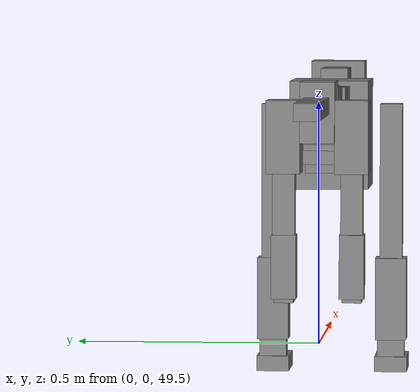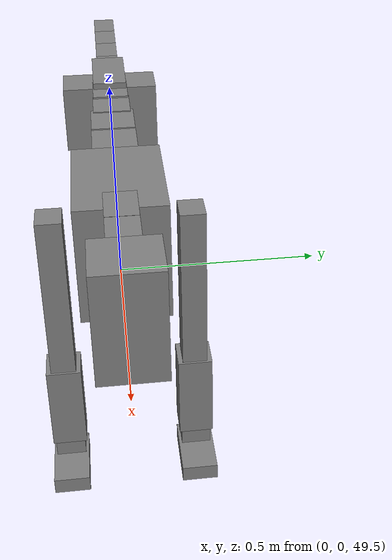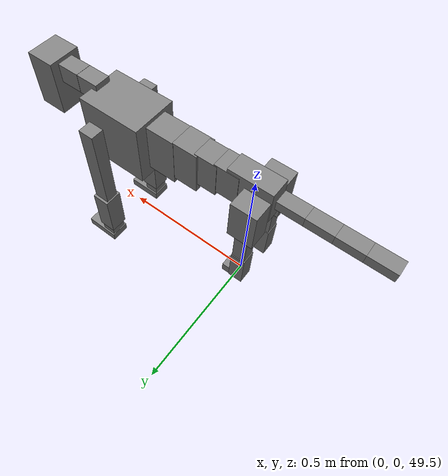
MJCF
<mujoco model="dog">

    <default>
        <joint armature="0.02" stiffness="1" damping="0.2" limited="true"/>
        <geom condim="3" friction="1 0.05 0.05" margin="0.01"/>
        <motor ctrllimited="true" ctrlrange="-1.0 1.0" forcelimited="true" gear="50"/>
    </default>

    <compiler inertiafromgeom="true" angle="radian"/>

    <option timestep="0.016" iterations="50" tolerance="1e-10" solver="Newton" jacobian="dense" cone="pyramidal"/>

    <size nconmax="20000" njmax="60000" nstack="5000000"/>
    <visual>
        <map force="0.1" zfar="30"/>
        <rgba haze="0.15 0.25 0.35 1"/>
        <quality shadowsize="2048"/>
        <global offwidth="800" offheight="800"/>
    </visual>

    <asset>
        <texture type="skybox" builtin="gradient" rgb1="0.3 0.5 0.7" rgb2="0 0 0" width="512" height="512"/>
        <texture name="texplane" type="2d" builtin="checker" rgb1=".2 .3 .4" rgb2=".1 0.15 0.2" width="512" height="512"
                 mark="cross" markrgb=".8 .8 .8"/>
        <texture name="texgeom" type="cube" builtin="flat" mark="cross" width="127" height="1278" rgb1="0.8 0.6 0.4"
                 rgb2="0.8 0.6 0.4" markrgb="1 1 1" random="0.01"/>

        <material name="matplane" reflectance="0.3" texture="texplane" texrepeat="1 1" texuniform="true"/>
        <material name="matgeom" texture="texgeom" texuniform="true" rgba="0.8 0.6 .4 1"/>
    </asset>

    <worldbody>
        <geom name="floor" pos="0 0 0" size="0 0 .25" type="plane" material="matplane" condim="3"/>

        <light directional="false" diffuse=".2 .2 .2" specular="0 0 0" pos="0 0 5" dir="0 0 -1" castshadow="false"/>
        <light mode="targetbodycom" target="torso" directional="false" diffuse=".8 .8 .8" specular="0.3 0.3 0.3"
               pos="0 0 4.0" dir="0 0 -1"/>

        <body name="root" pos="0 0 50">
            <freejoint name="root_1"/>
            <geom type="box" pos="0 0 -0.02" size="0.0774  0.0358  0.063" density="2030"/>

            <body name="spine1" pos="0.054 0 0">
                <joint name="spine1_y" axis="0 1 0" range="0 0.7" limited="true"/>
                <geom type="box" pos="0.02375 0 -0.03" size="0.04375  0.0375  0.05985" density="2030"/>

                <body name="spine2" pos="0.0612 0 0">
                    <joint name="spine2_y" axis="0 1 0" range="-0.15 0.15" limited="true"/>
                    <geom type="box" pos="0.03555  0  -0.04" size="0.04055  0.039  0.06615" density="2030"/>

                    <body name="spine3" pos="0.0730 0 0">
                        <joint name="spine3_y" axis="0 1 0" range="-0.15 0.15" limited="true"/>
                        <geom type="box" pos="0.03555  0  -0.057" size="0.04555  0.0445  0.081" density="2030"/>

                        <body name="spine4" pos="0.0780 0 0">
                            <joint name="spine4_y" axis="0 1 0" range="-0.15 0.15" limited="true"/>
                            <geom type="box" pos="0.05265  0  -0.07" size="0.05265  0.045  0.09135" density="2030"/>

                            <body name="torso" pos="0.1082 0 0">
                                <joint name="torso_y" axis="0 1 0" range="-0.15 0.15" limited="true"/>
                                <geom type="box" pos="0.11925  0  -0.085" size="0.11925  0.085  0.11745"
                                      density="2030"/>

                                <body name="neck1" pos="0.2160  0   0.0180">
                                    <joint name="neck1_y" axis="0 1 0" range="-1.2  -1" limited="true"/>
                                    <geom type="box" pos="0.0423  0  0" size="0.0423  0.03  0.036" density="2325"/>

                                    <body name="neck2" pos="0.0853  0  0">
                                        <joint name="neck2_y" axis="0 1 0" range="0.1  0" limited="true"/>
                                        <geom type="box" pos="0.0423  0  0" size="0.0423  0.03  0.036" density="2325"/>

                                        <body name="head" pos="0.0853  0  0">
                                            <joint name="head_y" axis="0 1 0" range="-0.3  -0.2" limited="true"/>
                                            <geom type="box" pos="0.0531  0  -0.055" size="0.0531  0.06  0.1044"
                                                  density="4030"/>

                                        </body>
                                    </body>
                                </body>

                                <body name="front_shoulder" pos="0.156  0   -0.0480">
                                    <joint name="front_shoulder_y" axis="0 1 0" range="-1 1.5" limited="true"/>
                                    <geom type="box" pos="0 0.13 -0.1561" size="0.0287  0.0245  0.1827" density="1158"/>
                                    <geom type="box" pos="0 -0.13 -0.1561" size="0.0287  0.0245  0.1827"
                                          density="1158"/>

                                    <body name="front_elbow" pos="0  0  -0.3122">
                                        <joint name="front_elbow_y" axis="0 1 0" range="-2 0" limited="true"/>
                                        <geom type="box" pos="0 0.13 -0.0900" size="0.0333  0.0340  0.0900"
                                              density="1081"/>
                                        <geom type="box" pos="0 -0.13 -0.0900" size="0.0333  0.0340  0.0900"
                                              density="1081"/>

                                        <body name="front_wrist" pos="0  0  -0.1800">
                                            <joint name="front_wrist_y" axis="0 1 0" range="-0.2 0" limited="true"/>
                                            <geom type="box" pos="0 0.13 -0.0262" size="0.0267  0.0296  0.0394"
                                                  density="1664"/>
                                            <geom type="box" pos="0 -0.13 -0.0262" size="0.0267  0.0296  0.0394"
                                                  density="1664"/>

                                            <body name="front_finger_end" pos="0  0  -0.0524">
                                                <joint name="front_finger_y" axis="0 1 0" range="-0.4 1"
                                                       limited="true"/>
                                                <geom type="box" pos="0.0355  0.13  -0.0017"
                                                      size="0.0651  0.0355  0.0167" density="1515"/>
                                                <geom type="box" pos="0.0355  -0.13  -0.0017"
                                                      size="0.0651  0.0355  0.0167" density="1515"/>

                                            </body>

                                        </body>
                                    </body>
                                </body>

                            </body>
                        </body>
                    </body>
                </body>
            </body>

            <body name="back_hip" pos="-0.03 0 -0.018">
                <joint name="back_hip_y" axis="0 1 0" range="-1.5 0.3" limited="true"/>
                <geom type="box" pos="0 0.07 -0.0525" size="0.0445  0.0349  0.0753" density="1154"/>
                <geom type="box" pos="0 -0.07 -0.0525" size="0.0445  0.0349  0.0753" density="1154"/>

                <body name="back_knee" pos="0  0  -0.1050">
                    <joint name="back_knee_y" axis="0 1 0" range="0 2.8" limited="true"/>
                    <geom type="box" pos="0 0.07 -0.0800" size="0.0231  0.0228  0.0956" density="1227"/>
                    <geom type="box" pos="0 -0.07 -0.0800" size="0.0231  0.0228  0.0956" density="1227"/>

                    <body name="back_ankle" pos="0  0  -0.1600">
                        <joint name="back_ankle_y" axis="0 1 0" range="-2.2 0" limited="true"/>
                        <geom type="box" pos="0 0.07 -0.0548" size="0.0256  0.0256  0.0661" density="1284"/>
                        <geom type="box" pos="0 -0.07 -0.0548" size="0.0256  0.0256  0.0661" density="1284"/>

                        <body name="back_toe_end" pos="0  0  -0.1097">
                            <joint name="back_toe_y" axis="0 1 0" range="-0.4 1" limited="true"/>
                            <geom type="box" pos="0.0199  0.07  -0.0023" size="0.0364  0.0199  0.0173" density="1515"/>
                            <geom type="box" pos="0.0199  -0.07  -0.0023" size="0.0364  0.0199  0.0173" density="1515"/>

                        </body>
                    </body>
                </body>
            </body>

            <body name="tail1" pos="-0.074 0 -0.006">
                <joint name="tail1_y" axis="0 1 0" range="-0.2 0.2" limited="true"/>
                <geom type="box" pos="-0.0536  0  0" size="0.045  0.025  0.0175" density="1587"/>

                <body name="tail2" pos="-0.09 0 0">
                    <joint name="tail2_y" axis="0 1 0" range="-0.2 0.2" limited="true"/>
                    <geom type="box" pos="-0.0536  0  0" size="0.045  0.025  0.0175" density="1587"/>

                    <body name="tail3" pos="-0.09 0 0">
                        <joint name="tail3_y" axis="0 1 0" range="-0.2 0.2" limited="true"/>
                        <geom type="box" pos="-0.0536  0  0" size="0.045  0.025  0.0175" density="1587"/>

                        <body name="tail4" pos="-0.09 0 0">
                            <joint name="tail4_y" axis="0 1 0" range="-0.2 0.2" limited="true"/>
                            <geom type="box" pos="-0.0536  0  0" size="0.045  0.025  0.0175" density="1587"/>

                        </body>
                    </body>
                </body>
            </body>
        </body>
    </worldbody>

    <actuator>
        <motor joint="spine1_y" forcerange="-150 150     "/>
        <motor joint="spine2_y" forcerange="-150 150     "/>
        <motor joint="spine3_y" forcerange="-150 150     "/>
        <motor joint="spine4_y" forcerange="-150 150     "/>
        <motor joint="torso_y" forcerange="-150 150     "/>
        <motor joint="neck1_y" forcerange="-100 100       "/>
        <motor joint="neck2_y" forcerange="-100 100       "/>
        <motor joint="head_y" forcerange="-150 150       "/>
        <motor joint="front_shoulder_y" forcerange="-128.05 135.43"/>
        <motor joint="front_elbow_y" forcerange="-157.34 190.17"/>
        <motor joint="front_wrist_y" forcerange="-110.27 126.65"/>
        <motor joint="front_finger_y" forcerange="-64.47 85.06"/>
        <motor joint="back_hip_y" forcerange="-341.76 323.12"/>
        <motor joint="back_knee_y" forcerange="-252.64 278.99"/>
        <motor joint="back_angle_y" forcerange="-236.29 73.05"/>
        <motor joint="back_toe_y" forcerange="-25.46 53.42"/>
        <motor joint="tail1_y" forcerange="-50 50     "/>
        <motor joint="tail2_y" forcerange="-50 50     "/>
        <motor joint="tail3_y" forcerange="-50 50     "/>
        <motor joint="tail4_y" forcerange="-50 50     "/>
    </actuator>
</mujoco>
